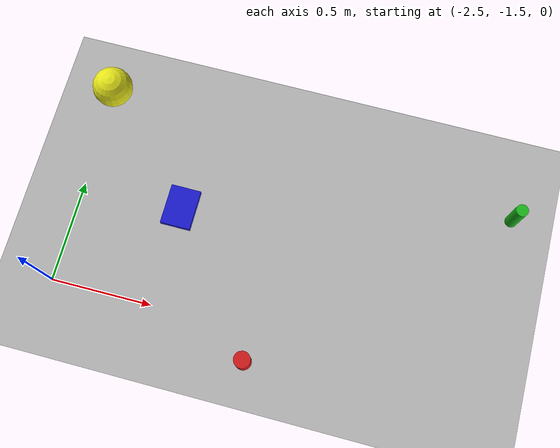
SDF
<sdf version="1.10">
 <world name="default">
  <scene>
   <shadows>false</shadows>
   <ambient>0.400000006 0.400000006 0.400000006 1</ambient>
   <background>0.699999988 0.699999988 0.699999988 1</background>
  </scene>
  <physics type="ode">
   <real_time_update_rate>1000</real_time_update_rate>
   <max_step_size>0.001</max_step_size>
   <real_time_factor>1</real_time_factor>
   <ode>
    <solver>
     <type>quick</type>
     <iters>150</iters>
     <precon_iters>0</precon_iters>
     <sor>1.3999999999999999</sor>
     <use_dynamic_moi_rescaling>true</use_dynamic_moi_rescaling>
    </solver>
    <constraints>
     <cfm>1.0000000000000001e-05</cfm>
     <erp>0.20000000000000001</erp>
     <contact_max_correcting_vel>2000</contact_max_correcting_vel>
     <contact_surface_layer>0.01</contact_surface_layer>
    </constraints>
   </ode>
  </physics>
  <plugin name="gz::sim::systems::Physics" filename="gz-sim-physics-system"/>
  <plugin name="gz::sim::systems::UserCommands" filename="gz-sim-user-commands-system"/>
  <plugin name="gz::sim::systems::SceneBroadcaster" filename="gz-sim-scene-broadcaster-system"/>
  <plugin name="gz::sim::systems::Sensors" filename="gz-sim-sensors-system">
   <render_engine>ogre2</render_engine>
  </plugin>
  <plugin name="gz::sim::systems::Imu" filename="gz-sim-imu-system"/>
  <gravity>0 0 -9.8000000000000007</gravity>
  <magnetic_field>5.5644999999999998e-06 2.2875799999999999e-05 -4.2388400000000002e-05</magnetic_field>
  <atmosphere type="adiabatic"/>
  <model name="ground_plane">
   <static>true</static>
   <link name="link">
    <collision name="collision">
     <geometry><plane><normal>0 0 1</normal><size>100 100</size></plane></geometry>
     <surface><friction><ode><mu>100</mu><mu2>50</mu2></ode></friction></surface>
    </collision>
    <visual name="visual">
     <cast_shadows>false</cast_shadows>
     <geometry><plane><normal>0 0 1</normal><size>100 100</size></plane></geometry>
     <material>
      <ambient>0.300000012 0.300000012 0.300000012 1</ambient>
      <diffuse>0.699999988 0.699999988 0.699999988 1</diffuse>
      <specular>0.00999999978 0.00999999978 0.00999999978 1</specular>
     </material>
    </visual>
    <inertial>
     <mass>1</mass>
     <inertia><ixx>1</ixx><ixy>0</ixy><ixz>0</ixz><iyy>1</iyy><iyz>0</iyz><izz>1</izz></inertia>
    </inertial>
   </link>
  </model>
  <model name="red_cup">
   <pose>-1.5 -1.6438214778900146 0.059999998658895493 0 0 0</pose>
   <static>true</static>
   <link name="link">
    <visual name="visual">
     <geometry><cylinder><radius>0.040000000000000001</radius><length>0.12</length></cylinder></geometry>
     <material>
      <ambient>0.800000012 0.100000001 0.100000001 1</ambient>
      <diffuse>0.800000012 0.100000001 0.100000001 1</diffuse>
     </material>
    </visual>
    <collision name="collision">
     <geometry><cylinder><radius>0.040000000000000001</radius><length>0.12</length></cylinder></geometry>
    </collision>
    <inertial>
     <mass>1</mass>
     <inertia><ixx>1</ixx><ixy>0</ixy><ixz>0</ixz><iyy>1</iyy><iyz>0</iyz><izz>1</izz></inertia>
    </inertial>
   </link>
  </model>
  <model name="blue_book">
   <pose>-2 -1 0.014999999999999999 0 0 0</pose>
   <static>true</static>
   <link name="link">
    <visual name="visual">
     <geometry><box><size>0.14999999999999999 0.20000000000000001 0.029999999999999999</size></box></geometry>
     <material>
      <ambient>0.100000001 0.100000001 0.800000012 1</ambient>
      <diffuse>0.100000001 0.100000001 0.800000012 1</diffuse>
     </material>
    </visual>
    <collision name="collision">
     <geometry><box><size>0.14999999999999999 0.20000000000000001 0.029999999999999999</size></box></geometry>
    </collision>
    <inertial>
     <mass>1</mass>
     <inertia><ixx>1</ixx><ixy>0</ixy><ixz>0</ixz><iyy>1</iyy><iyz>0</iyz><izz>1</izz></inertia>
    </inertial>
   </link>
  </model>
  <model name="yellow_ball">
   <pose>-2.5 -0.5 0.10000000000000001 0 0 0</pose>
   <static>true</static>
   <link name="link">
    <visual name="visual">
     <geometry><sphere><radius>0.10000000000000001</radius></sphere></geometry>
     <material>
      <ambient>0.899999976 0.899999976 0.100000001 1</ambient>
      <diffuse>0.899999976 0.899999976 0.100000001 1</diffuse>
     </material>
    </visual>
    <collision name="collision">
     <geometry><sphere><radius>0.10000000000000001</radius></sphere></geometry>
    </collision>
    <inertial>
     <mass>1</mass>
     <inertia><ixx>1</ixx><ixy>0</ixy><ixz>0</ixz><iyy>1</iyy><iyz>0</iyz><izz>1</izz></inertia>
    </inertial>
   </link>
  </model>
  <model name="green_bottle">
   <pose>-0.40662199258804321 -0.65009671449661255 0.10000000149011612 0 0 0</pose>
   <static>true</static>
   <link name="link">
    <visual name="visual">
     <geometry>
      <cylinder><radius>0.029999999999999999</radius><length>0.20000000000000001</length></cylinder>
     </geometry>
     <material>
      <ambient>0.100000001 0.699999988 0.100000001 1</ambient>
      <diffuse>0.100000001 0.699999988 0.100000001 1</diffuse>
     </material>
    </visual>
    <collision name="collision">
     <geometry>
      <cylinder><radius>0.029999999999999999</radius><length>0.20000000000000001</length></cylinder>
     </geometry>
    </collision>
    <inertial>
     <mass>1</mass>
     <inertia><ixx>1</ixx><ixy>0</ixy><ixz>0</ixz><iyy>1</iyy><iyz>0</iyz><izz>1</izz></inertia>
    </inertial>
   </link>
  </model>
  <light name="sun" type="directional">
   <pose>0 0 10 0 0 0</pose>
   <intensity>1</intensity>
   <direction>-0.5 0.10000000000000001 -0.90000000000000002</direction>
   <diffuse>0.800000012 0.800000012 0.800000012 1</diffuse>
   <specular>0.200000003 0.200000003 0.200000003 1</specular>
   <attenuation>
    <range>1000</range>
    <linear>0.0099999997764825821</linear>
    <constant>0.89999997615814209</constant>
    <quadratic>0.0010000000474974513</quadratic>
   </attenuation>
   <spot><inner_angle>0</inner_angle><outer_angle>0</outer_angle><falloff>0</falloff></spot>
  </light>
  <plugin filename="gz-sim-user-commands-system" name="gz::sim::systems::UserCommands"/>
 </world>
</sdf>
